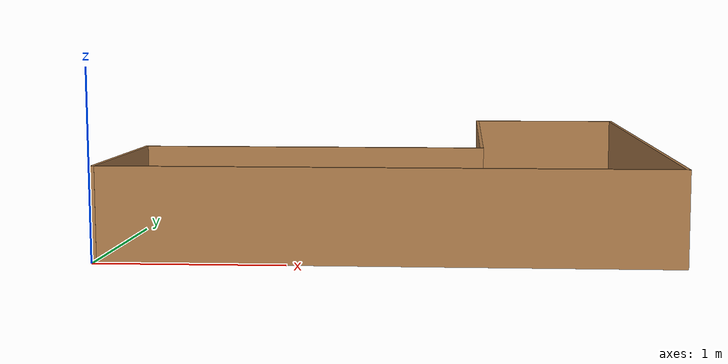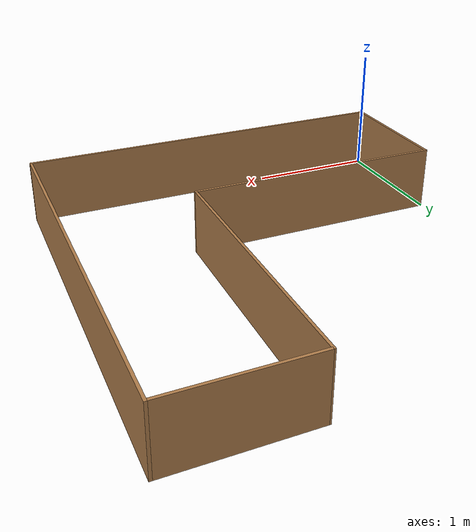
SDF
<?xml version='1.0'?>
<sdf version='1.6'>
  <model name='Motion2'>
    <pose frame=''>1.50453 1.50134 0 0 -0 0</pose>
    <link name='Wall_0'>
      <collision name='Wall_0_Collision'>
        <geometry>
          <box>
            <size>3 0.02 0.5</size>
          </box>
        </geometry>
        <pose frame=''>0 0 0.25 0 -0 0</pose>
      </collision>
      <visual name='Wall_0_Visual'>
        <pose frame=''>0 0 0.25 0 -0 0</pose>
        <geometry>
          <box>
            <size>3 0.02 0.5</size>
          </box>
        </geometry>
        <material>
          <script>
            <uri>file://media/materials/scripts/gazebo.material</uri>
            <name>Gazebo/Wood</name>
          </script>
          <ambient>1 1 1 1</ambient>
        </material>
        <meta>
          <layer>0</layer>
        </meta>
      </visual>
      <pose frame=''>0.000263 -1.4905 0 0 -0 0</pose>
    </link>
    <link name='Wall_10'>
      <collision name='Wall_10_Collision'>
        <geometry>
          <box>
            <size>2 0.02 0.5</size>
          </box>
        </geometry>
        <pose frame=''>0 0 0.25 0 -0 0</pose>
      </collision>
      <visual name='Wall_10_Visual'>
        <pose frame=''>0 0 0.25 0 -0 0</pose>
        <geometry>
          <box>
            <size>2 0.02 0.5</size>
          </box>
        </geometry>
        <material>
          <script>
            <uri>file://media/materials/scripts/gazebo.material</uri>
            <name>Gazebo/Wood</name>
          </script>
          <ambient>1 1 1 1</ambient>
        </material>
        <meta>
          <layer>0</layer>
        </meta>
      </visual>
      <pose frame=''>0.489938 0.50019 0 0 -0 -1.5708</pose>
    </link>
    <link name='Wall_12'>
      <collision name='Wall_12_Collision'>
        <geometry>
          <box>
            <size>1 0.02 0.5</size>
          </box>
        </geometry>
        <pose frame=''>0 0 0.25 0 -0 0</pose>
      </collision>
      <visual name='Wall_12_Visual'>
        <pose frame=''>0 0 0.25 0 -0 0</pose>
        <geometry>
          <box>
            <size>1 0.02 0.5</size>
          </box>
        </geometry>
        <material>
          <script>
            <uri>file://media/materials/scripts/gazebo.material</uri>
            <name>Gazebo/Wood</name>
          </script>
          <ambient>1 1 1 1</ambient>
        </material>
        <meta>
          <layer>0</layer>
        </meta>
      </visual>
      <pose frame=''>0.992036 1.49038 0 0 -0 0</pose>
    </link>
    <link name='Wall_4'>
      <collision name='Wall_4_Collision'>
        <geometry>
          <box>
            <size>2 0.02 0.5</size>
          </box>
        </geometry>
        <pose frame=''>0 0 0.25 0 -0 0</pose>
      </collision>
      <visual name='Wall_4_Visual'>
        <pose frame=''>0 0 0.25 0 -0 0</pose>
        <geometry>
          <box>
            <size>2 0.02 0.5</size>
          </box>
        </geometry>
        <material>
          <script>
            <uri>file://media/materials/scripts/gazebo.material</uri>
            <name>Gazebo/Wood</name>
          </script>
          <ambient>1 1 1 1</ambient>
        </material>
        <meta>
          <layer>0</layer>
        </meta>
      </visual>
      <pose frame=''>-0.500263 -0.507716 0 0 -0 0</pose>
    </link>
    <link name='Wall_6'>
      <collision name='Wall_6_Collision'>
        <geometry>
          <box>
            <size>1 0.02 0.5</size>
          </box>
        </geometry>
        <pose frame=''>0 0 0.25 0 -0 0</pose>
      </collision>
      <visual name='Wall_6_Visual'>
        <pose frame=''>0 0 0.25 0 -0 0</pose>
        <geometry>
          <box>
            <size>1 0.02 0.5</size>
          </box>
        </geometry>
        <material>
          <script>
            <uri>file://media/materials/scripts/gazebo.material</uri>
            <name>Gazebo/Wood</name>
          </script>
          <ambient>1 1 1 1</ambient>
        </material>
        <meta>
          <layer>0</layer>
        </meta>
      </visual>
      <pose frame=''>-1.49013 -1.00087 0 0 -0 -1.5708</pose>
    </link>
    <link name='Wall_8'>
      <collision name='Wall_8_Collision'>
        <geometry>
          <box>
            <size>3 0.02 0.5</size>
          </box>
        </geometry>
        <pose frame=''>0 0 0.25 0 -0 0</pose>
      </collision>
      <visual name='Wall_8_Visual'>
        <pose frame=''>0 0 0.25 0 -0 0</pose>
        <geometry>
          <box>
            <size>3 0.02 0.5</size>
          </box>
        </geometry>
        <material>
          <script>
            <uri>file://media/materials/scripts/gazebo.material</uri>
            <name>Gazebo/Wood</name>
          </script>
          <ambient>1 1 1 1</ambient>
        </material>
        <meta>
          <layer>0</layer>
        </meta>
      </visual>
      <pose frame=''>1.49016 0.000868 0 0 -0 1.5708</pose>
    </link>
    <static>1</static>
  </model>
</sdf>
